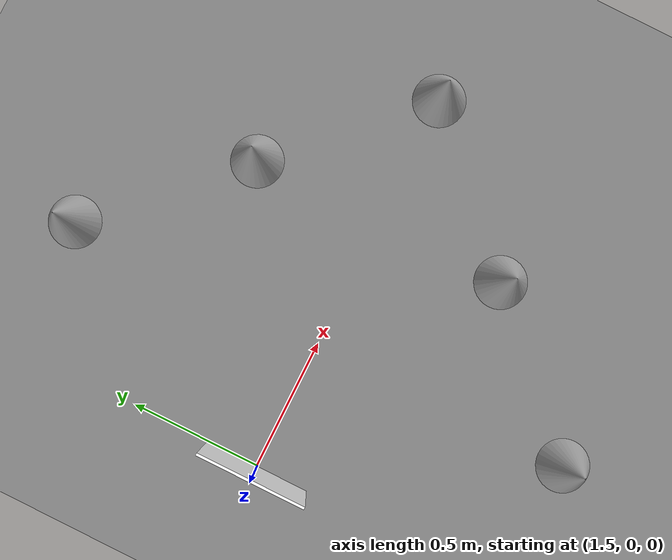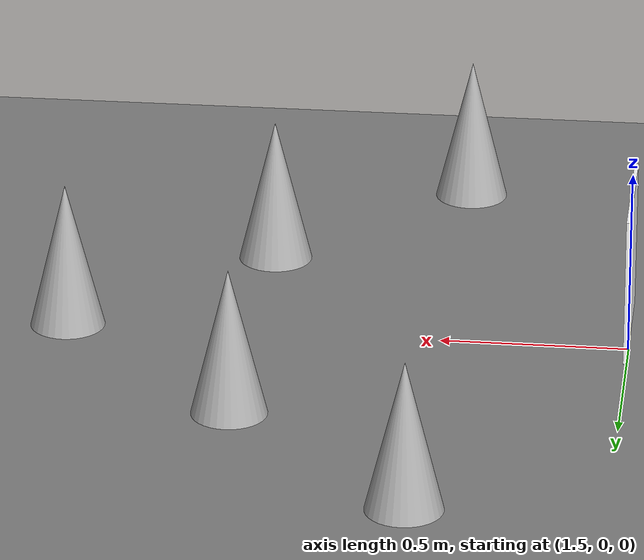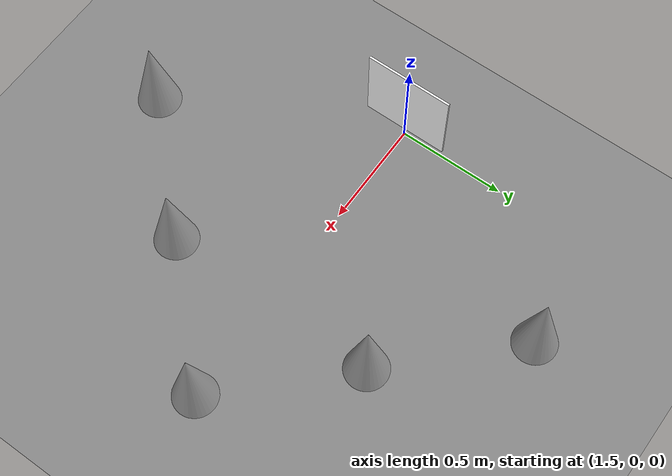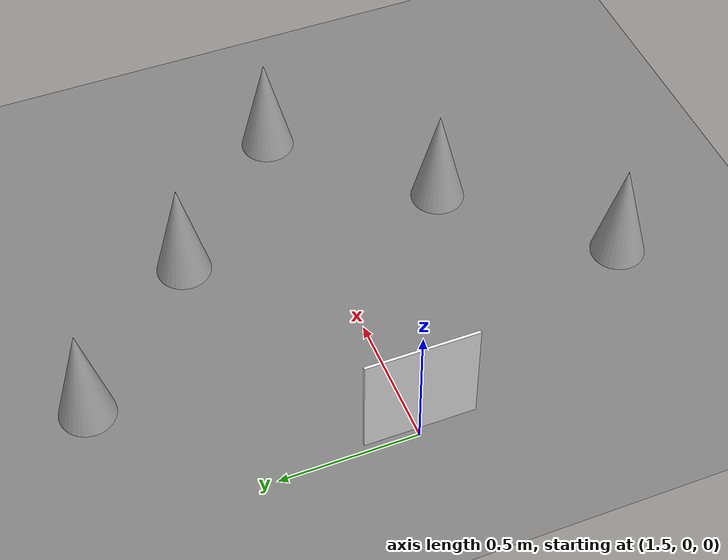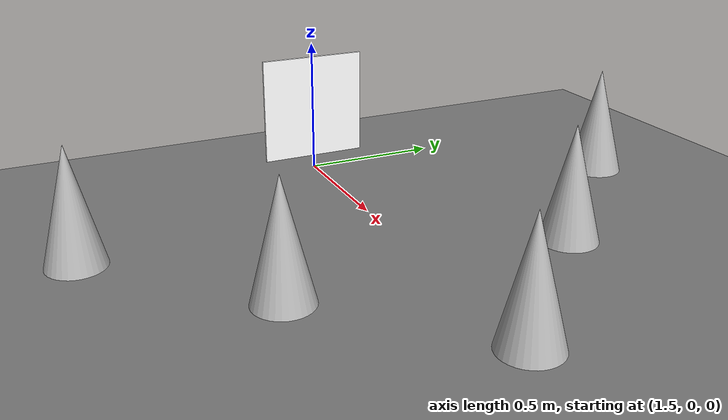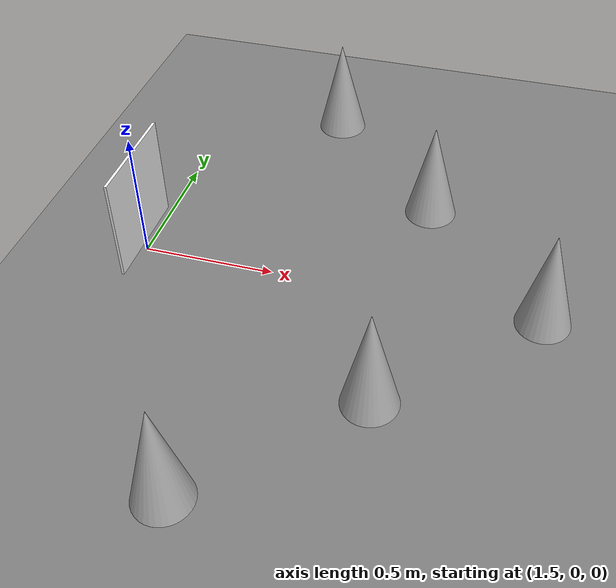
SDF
<?xml version="1.0" ?>
<sdf version="1.8">
  <world name="my_world">

    <physics name="1ms" type="ignored">
      <max_step_size>0.001</max_step_size>
      <real_time_factor>1.0</real_time_factor>
    </physics>
    <light type="directional" name="sun">
      <cast_shadows>true</cast_shadows>
      <pose>0 0 10 0 0 0</pose> <diffuse>0.8 0.8 0.8 1</diffuse>
      <specular>0.2 0.2 0.2 1</specular>
      <direction>-0.5 0.1 -0.9</direction> </light>

    <model name="ground_plane">
      <static>true</static>
      <link name="link">

        <collision name="collision">
          <geometry>
            <plane>
              <normal>0 0 1</normal> <size>100 100</size> </plane>
          </geometry>
        </collision>

        <visual name="visual">
          <geometry>
            <plane>
              <normal>0 0 1</normal>
              <size>100 100</size>
            </plane>
          </geometry>
          <material>
            <ambient>0.5 0.5 0.5 1</ambient> <diffuse>0.5 0.5 0.5 1</diffuse>
          </material>
        </visual>

      </link>
    </model>

    <plugin filename="libignition-gazebo-physics-system.so" name="ignition::gazebo::systems::Physics"/>
    <plugin filename="libignition-gazebo-scene-broadcaster-system.so" name="ignition::gazebo::systems::SceneBroadcaster"/>
    <plugin filename="libignition-gazebo-user-commands-system.so" name="ignition::gazebo::systems::UserCommands"/>

    <plugin filename="libignition-gazebo-sensors-system.so" name="ignition::gazebo::systems::Sensors">
      <render_engine>ogre2</render_engine>
    </plugin>
    <plugin filename="libignition-gazebo-imu-system.so" name="ignition::gazebo::systems::Imu"/>

    <model name="red_cone">
      <pose>2.0 -1.0 0.2 0 0 0</pose>
      <static>true</static>
      <link name="link">
        <visual name="visual">
          <geometry><mesh><uri>file:///home/yashvant/ros2_ws/src/my_robot_opencv_package/worlds/red_cone.obj</uri></mesh></geometry>
        </visual>
        <collision name="collision">
          <geometry><cylinder><radius>0.1</radius><length>0.4</length></cylinder></geometry>
        </collision>
      </link>
    </model>

    <model name="green_cone">
      <pose>2.5 -0.5 0.2 0 0 0</pose>
      <static>true</static>
      <link name="link">
        <visual name="visual">
          <geometry><mesh><uri>file:///home/yashvant/ros2_ws/src/my_robot_opencv_package/worlds/green_cone.obj</uri></mesh></geometry>
        </visual>
        <collision name="collision">
          <geometry><cylinder><radius>0.1</radius><length>0.4</length></cylinder></geometry>
        </collision>
      </link>
    </model>

    <model name="blue_cone">
      <pose>3.0 0 0.2 0 0 0</pose>
      <static>true</static>
      <link name="link">
        <visual name="visual">
          <geometry><mesh><uri>file:///home/yashvant/ros2_ws/src/my_robot_opencv_package/worlds/blue_cone.obj</uri></mesh></geometry>
        </visual>
        <collision name="collision">
          <geometry><cylinder><radius>0.1</radius><length>0.4</length></cylinder></geometry>
        </collision>
      </link>
    </model>

    <model name="yellow_cone">
      <pose>2.5 0.5 0.2 0 0 0</pose>
      <static>true</static>
      <link name="link">
        <visual name="visual">
          <geometry><mesh><uri>file:///home/yashvant/ros2_ws/src/my_robot_opencv_package/worlds/yellow_cone.obj</uri></mesh></geometry>
        </visual>
        <collision name="collision">
          <geometry><cylinder><radius>0.1</radius><length>0.4</length></cylinder></geometry>
        </collision>
      </link>
    </model>

    <model name="orange_cone">
      <pose>2.0 1.0 0.2 0 0 0</pose>
      <static>true</static>
      <link name="link">
        <visual name="visual">
          <geometry><mesh><uri>file:///home/yashvant/ros2_ws/src/my_robot_opencv_package/worlds/orange_cone.obj</uri></mesh></geometry>
        </visual>
        <collision name="collision">
          <geometry><cylinder><radius>0.1</radius><length>0.4</length></cylinder></geometry>
        </collision>
      </link>
    </model>

    <model name="aruco_target">
      <pose>1.5 0 0.25 0 0 0</pose>
      <static>true</static>
      <link name="link">
        <visual name="visual">
          <geometry><box><size>0.01 0.4 0.4</size></box></geometry>
          <material>
            <ambient>1 1 1 1</ambient>
            <diffuse>1 1 1 1</diffuse>
            <pbr>
              <metal>
                <albedo_map>/home/yashvant/ros2_ws/src/my_robot_opencv_package/worlds/aruco_marker.png</albedo_map>
              </metal>
            </pbr>
          </material>
        </visual>
        <collision name="collision">
          <geometry><box><size>0.01 0.4 0.4</size></box></geometry>
        </collision>
      </link>
    </model>

  </world>
</sdf>
